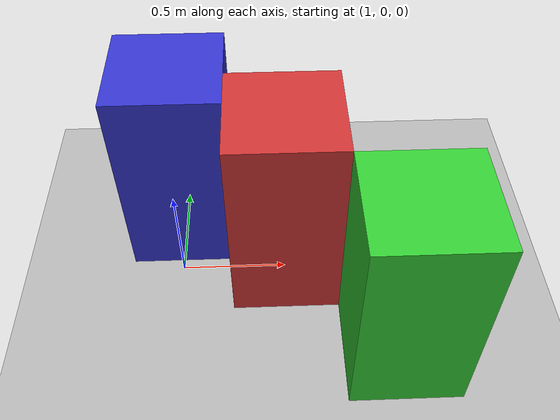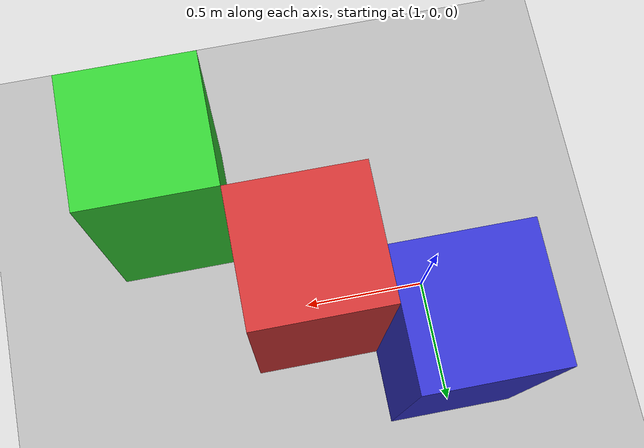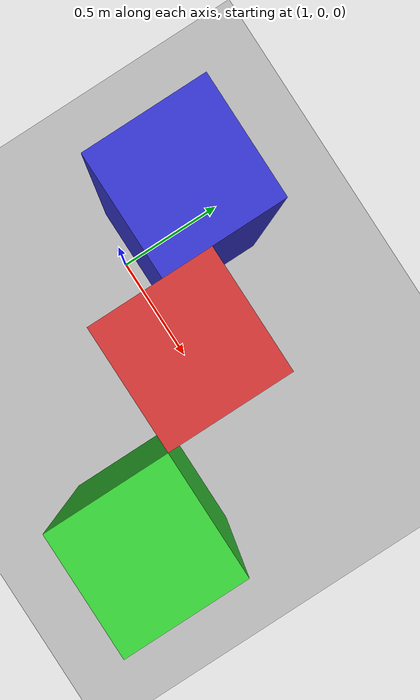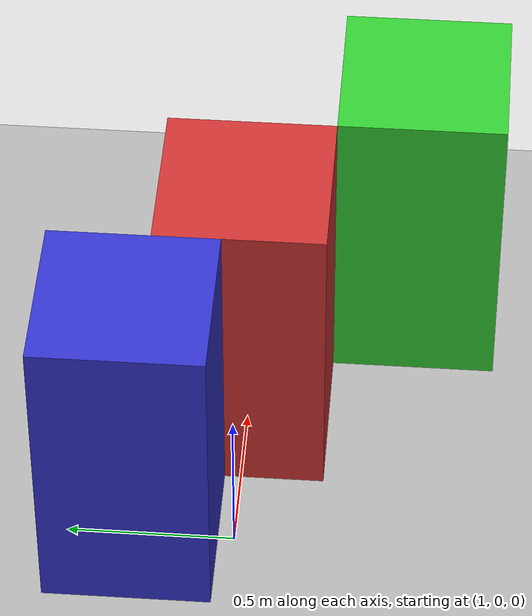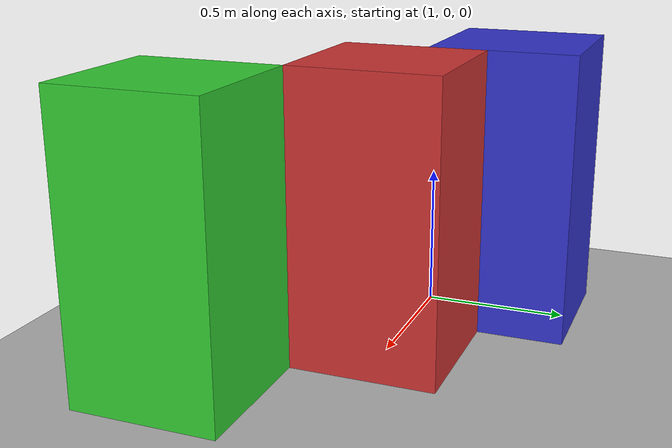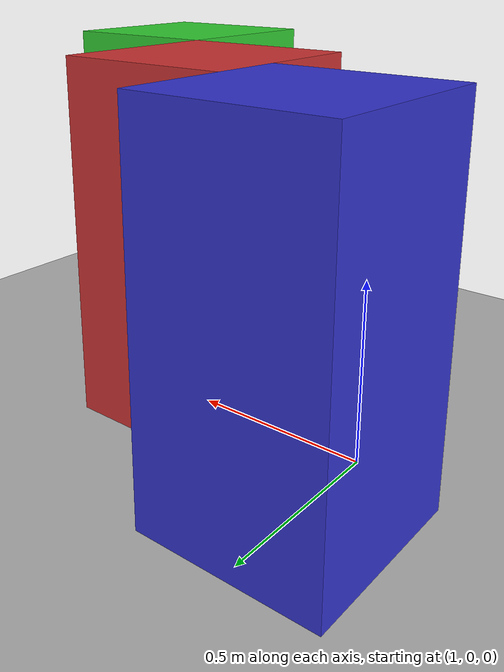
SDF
<?xml version="1.0" ?>
<sdf version="1.9">
  <world name="obstacle_test">

    <!-- ── Gazebo Harmonic system plugins ──────────────────────────────────── -->
    <plugin filename="gz-sim-physics-system"
            name="gz::sim::systems::Physics"/>
    <plugin filename="gz-sim-sensors-system"
            name="gz::sim::systems::Sensors">
      <render_engine>ogre2</render_engine>
    </plugin>
    <plugin filename="gz-sim-scene-broadcaster-system"
            name="gz::sim::systems::SceneBroadcaster"/>
    <plugin filename="gz-sim-user-commands-system"
            name="gz::sim::systems::UserCommands"/>

    <!-- ── Physics ─────────────────────────────────────────────────────────── -->
    <physics name="default_physics" type="ode">
      <max_step_size>0.001</max_step_size>
      <real_time_factor>1.0</real_time_factor>
    </physics>

    <!-- ── Lighting ────────────────────────────────────────────────────────── -->
    <light name="sun" type="directional">
      <cast_shadows>true</cast_shadows>
      <pose>0 0 10  0 0 0</pose>
      <diffuse>1 1 1 1</diffuse>
      <specular>0.5 0.5 0.5 1</specular>
      <direction>-0.5 0.1 -0.9</direction>
      <attenuation>
        <range>1000</range>
        <constant>0.9</constant>
        <linear>0.01</linear>
        <quadratic>0.001</quadratic>
      </attenuation>
    </light>

    <!-- ── Ground plane (inline — avoids model:// URI lookup) ─────────────── -->
    <model name="ground_plane">
      <static>true</static>
      <link name="link">
        <collision name="col">
          <geometry>
            <plane><normal>0 0 1</normal><size>200 200</size></plane>
          </geometry>
        </collision>
        <visual name="vis">
          <geometry>
            <plane><normal>0 0 1</normal><size>200 200</size></plane>
          </geometry>
          <material>
            <ambient>0.7 0.7 0.7 1</ambient>
            <diffuse>0.7 0.7 0.7 1</diffuse>
          </material>
        </visual>
      </link>
    </model>

    <!-- ── Obstacle A: 1.5 m directly ahead ───────────────────────────────── -->
    <model name="obstacle_a">
      <static>true</static>
      <pose>1.5 0.0 0.5  0 0 0</pose>
      <link name="link">
        <collision name="col">
          <geometry><box><size>0.5 0.5 1.0</size></box></geometry>
        </collision>
        <visual name="vis">
          <geometry><box><size>0.5 0.5 1.0</size></box></geometry>
          <material>
            <ambient>0.8 0.2 0.2 1</ambient>
            <diffuse>0.8 0.2 0.2 1</diffuse>
          </material>
        </visual>
      </link>
    </model>

    <!-- ── Obstacle B: 2.0 m ahead, 0.5 m right (−Y in ROS) ──────────────── -->
    <model name="obstacle_b">
      <static>true</static>
      <pose>2.0 -0.5 0.5  0 0 0</pose>
      <link name="link">
        <collision name="col">
          <geometry><box><size>0.5 0.5 1.0</size></box></geometry>
        </collision>
        <visual name="vis">
          <geometry><box><size>0.5 0.5 1.0</size></box></geometry>
          <material>
            <ambient>0.2 0.8 0.2 1</ambient>
            <diffuse>0.2 0.8 0.2 1</diffuse>
          </material>
        </visual>
      </link>
    </model>

    <!-- ── Obstacle C: 1.0 m ahead, 0.3 m left (+Y in ROS) ───────────────── -->
    <model name="obstacle_c">
      <static>true</static>
      <pose>1.0 0.3 0.5  0 0 0</pose>
      <link name="link">
        <collision name="col">
          <geometry><box><size>0.5 0.5 1.0</size></box></geometry>
        </collision>
        <visual name="vis">
          <geometry><box><size>0.5 0.5 1.0</size></box></geometry>
          <material>
            <ambient>0.2 0.2 0.8 1</ambient>
            <diffuse>0.2 0.2 0.8 1</diffuse>
          </material>
        </visual>
      </link>
    </model>

  </world>
</sdf>
